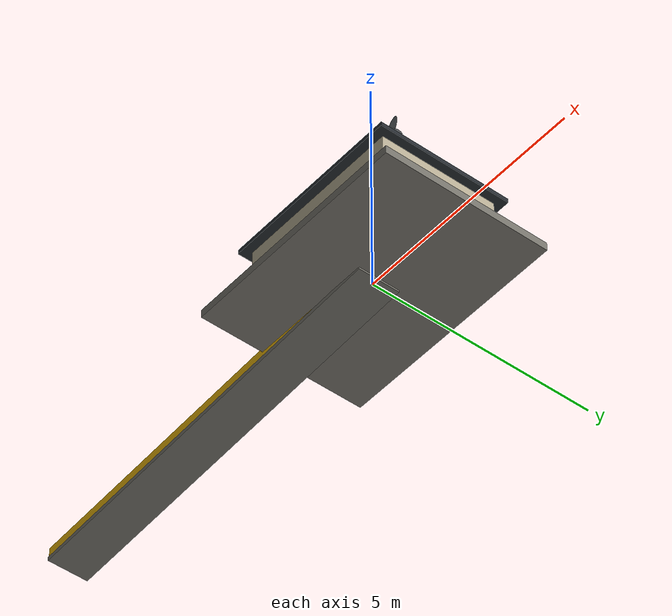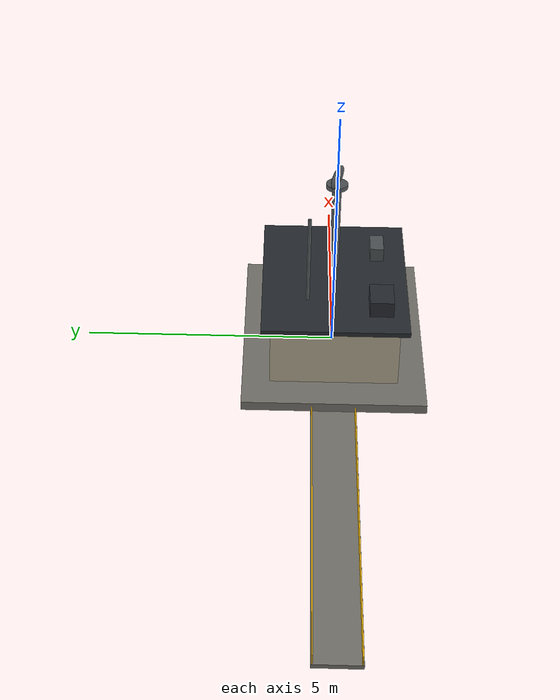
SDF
<?xml version='1.0' encoding='UTF-8'?>
<sdf version="1.10">
  <!-- Unity presentation geometry scale=0.18 -->
  <!-- Numeric visual source: SimulationBootstrap.BuildShoreCommandBase. -->
  <model name="mountain_shore_command_base">
    <static>true</static>
    <link name="base_link">
      <collision name="foundation_collision">
        <pose>0 0 0.09 0 0 0</pose>
        <geometry>
          <box>
            <size>5.04 3.6 0.18</size>
          </box>
        </geometry>
      </collision>
      <visual name="foundation">
        <pose>0 0 0.09 0 0 0</pose>
        <geometry>
          <box>
            <size>5.04 3.6 0.18</size>
          </box>
        </geometry>
        <material>
          <ambient>.216 .2115 .198 1</ambient>
          <diffuse>.48 .47 .44 1</diffuse>
        </material>
      </visual>
      <collision name="building_collision">
        <pose>0 0 0.756 0 0 0</pose>
        <geometry>
          <box>
            <size>3.6 2.52 1.296</size>
          </box>
        </geometry>
      </collision>
      <visual name="building">
        <pose>0 0 0.756 0 0 0</pose>
        <geometry>
          <box>
            <size>3.6 2.52 1.296</size>
          </box>
        </geometry>
        <material>
          <ambient>.333 .315 .27 1</ambient>
          <diffuse>.74 .70 .60 1</diffuse>
        </material>
      </visual>
      <collision name="roof_collision">
        <pose>0 0 1.44 0 0 0</pose>
        <geometry>
          <box>
            <size>3.96 2.88 0.09</size>
          </box>
        </geometry>
      </collision>
      <visual name="roof">
        <pose>0 0 1.44 0 0 0</pose>
        <geometry>
          <box>
            <size>3.96 2.88 0.09</size>
          </box>
        </geometry>
        <material>
          <ambient>.072 .081 .09 1</ambient>
          <diffuse>.16 .18 .20 1</diffuse>
        </material>
      </visual>
      <visual name="front_windows">
        <pose>1.8072 0 0.918 0 0 0</pose>
        <geometry>
          <box>
            <size>0.0144 1.62 0.396</size>
          </box>
        </geometry>
        <material>
          <ambient>.01575 .1035 .153 1</ambient>
          <diffuse>.035 .23 .34 1</diffuse>
        </material>
      </visual>
      <collision name="bridge_collision">
        <pose>-4.32 0 -0.27 0 -.06 0</pose>
        <geometry>
          <box>
            <size>9 0.9 0.09</size>
          </box>
        </geometry>
      </collision>
      <visual name="bridge_to_pad">
        <pose>-4.32 0 -0.27 0 -.06 0</pose>
        <geometry>
          <box>
            <size>9 0.9 0.09</size>
          </box>
        </geometry>
        <material>
          <ambient>.216 .2115 .198 1</ambient>
          <diffuse>.48 .47 .44 1</diffuse>
        </material>
      </visual>
      <visual name="bridge_rail_left">
        <pose>-4.32 0.423 -0.117 0 -.06 0</pose>
        <geometry>
          <box>
            <size>9 0.0216 0.216</size>
          </box>
        </geometry>
        <material>
          <ambient>.441 .3375 .018 1</ambient>
          <diffuse>.98 .75 .04 1</diffuse>
        </material>
      </visual>
      <visual name="bridge_rail_right">
        <pose>-4.32 -0.423 -0.117 0 -.06 0</pose>
        <geometry>
          <box>
            <size>9 0.0216 0.216</size>
          </box>
        </geometry>
        <material>
          <ambient>.441 .3375 .018 1</ambient>
          <diffuse>.98 .75 .04 1</diffuse>
        </material>
      </visual>
      <collision name="radar_tower_collision">
        <pose>0.54 0 2.34 0 0 0</pose>
        <geometry>
          <cylinder>
            <radius>0.09</radius>
            <length>1.8</length>
          </cylinder>
        </geometry>
      </collision>
      <visual name="radar_tower">
        <pose>0.54 0 2.34 0 0 0</pose>
        <geometry>
          <cylinder>
            <radius>0.09</radius>
            <length>1.8</length>
          </cylinder>
        </geometry>
        <material>
          <ambient>.144 .153 .1575 1</ambient>
          <diffuse>.32 .34 .35 1</diffuse>
        </material>
      </visual>
      <visual name="radar_pedestal">
        <pose>0.54 0 3.276 0 0 0</pose>
        <geometry>
          <cylinder>
            <radius>0.216</radius>
            <length>0.09</length>
          </cylinder>
        </geometry>
        <material>
          <ambient>.144 .153 .1575 1</ambient>
          <diffuse>.32 .34 .35 1</diffuse>
        </material>
      </visual>
      <visual name="radar_dish">
        <pose>0.54 0 3.456 0 0 -.3839724354</pose>
        <geometry>
          <ellipsoid>
            <radii>0.342 0.0405 0.207</radii>
          </ellipsoid>
        </geometry>
        <material>
          <ambient>.144 .153 .1575 1</ambient>
          <diffuse>.32 .34 .35 1</diffuse>
        </material>
      </visual>
      <visual name="antenna_mast">
        <pose>-0.9 0.54 2.43 0 0 0</pose>
        <geometry>
          <cylinder>
            <radius>0.0324</radius>
            <length>1.8</length>
          </cylinder>
        </geometry>
        <material>
          <ambient>.144 .153 .1575 1</ambient>
          <diffuse>.32 .34 .35 1</diffuse>
        </material>
      </visual>
      <visual name="generator">
        <pose>-1.08 -0.9 1.638 0 0 0</pose>
        <geometry>
          <box>
            <size>0.684 0.468 0.324</size>
          </box>
        </geometry>
        <material>
          <ambient>.072 .081 .09 1</ambient>
          <diffuse>.16 .18 .20 1</diffuse>
        </material>
      </visual>
      <visual name="equipment_console">
        <pose>0.9 -0.864 1.62 0 0 0</pose>
        <geometry>
          <box>
            <size>0.54 0.27 0.288</size>
          </box>
        </geometry>
        <material>
          <ambient>.144 .153 .1575 1</ambient>
          <diffuse>.32 .34 .35 1</diffuse>
        </material>
      </visual>
    </link>
  </model>
</sdf>
